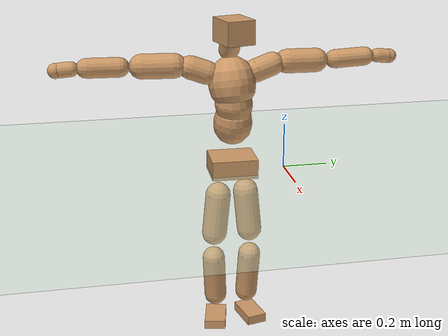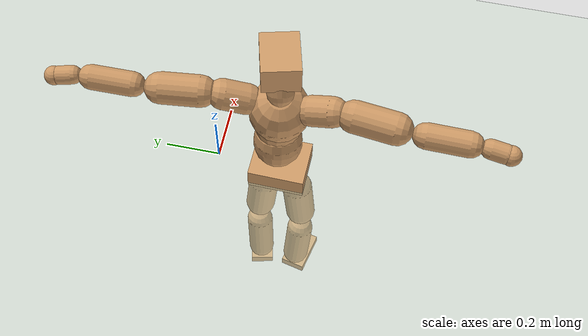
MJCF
<mujoco model="humanoid">
  <compiler coordinate="local" angle="radian"/>
  <default>
    <joint damping="0.0" armature="0.01" stiffness="0.0" limited="true"/>
    <geom conaffinity="1" condim="3" contype="7" margin="0.001" rgba="0.8 0.6 .4 1"/>
  </default>
  <asset>
    <texture type="skybox" builtin="gradient" rgb1=".4 .5 .6" rgb2="0 0 0" width="100" height="100"/>
    <texture builtin="flat" height="1278" mark="cross" markrgb="1 1 1" name="texgeom" random="0.01" rgb1="0.8 0.6 0.4" rgb2="0.8 0.6 0.4" type="cube" width="127"/>
    <texture builtin="checker" height="100" name="texplane" rgb1="0 0 0" rgb2="0.8 0.8 0.8" type="2d" width="100"/>
    <material name="MatPlane" reflectance="0.5" shininess="1" specular="1" texrepeat="60 60" texture="texplane"/>
    <material name="geom" texture="texgeom" texuniform="true"/>
  </asset>
  <worldbody>
    <light cutoff="100" diffuse="1 1 1" dir="-0 0 -1.3" directional="true" exponent="1" pos="0 0 1.3" specular=".1 .1 .1"/>
    <geom conaffinity="1" condim="3" name="floor" pos="0 0 0" rgba="0.8 0.9 0.8 1" size="100 100 .2" type="plane" material="MatPlane"/>
    <body name="Pelvis" pos="-0.0001 -0.2358 0.0324">
      <freejoint name="Pelvis"/>
      <geom type="box" contype="1" conaffinity="1" density="500" pos="-0.0090 0.0002 -0.0070" size="0.0864 0.1019 0.0426" quat="1.0000 0.0000 0.0000 -0.0087" name="Pelvis"/>
      <body name="L_Hip" pos="-0.0109 0.0559 -0.0763">
        <joint name="L_Hip_x" type="hinge" pos="0 0 0" axis="1 0 0" stiffness="800" damping="80" armature="0.02" range="-180.0000 180.0000"/>
        <joint name="L_Hip_y" type="hinge" pos="0 0 0" axis="0 1 0" stiffness="800" damping="80" armature="0.02" range="-180.0000 180.0000"/>
        <joint name="L_Hip_z" type="hinge" pos="0 0 0" axis="0 0 1" stiffness="800" damping="80" armature="0.02" range="-180.0000 180.0000"/>
        <geom type="capsule" contype="1" conaffinity="1" density="500" fromto="0.0010 0.0061 -0.0630 0.0039 0.0243 -0.2522" size="0.0563" name="L_Hip"/>
        <body name="L_Knee" pos="0.0049 0.0303 -0.3152">
          <joint name="L_Knee_x" type="hinge" pos="0 0 0" axis="1 0 0" stiffness="800" damping="80" armature="0.02" range="-180.0000 180.0000"/>
          <joint name="L_Knee_y" type="hinge" pos="0 0 0" axis="0 1 0" stiffness="800" damping="80" armature="0.02" range="-180.0000 180.0000"/>
          <joint name="L_Knee_z" type="hinge" pos="0 0 0" axis="0 0 1" stiffness="800" damping="80" armature="0.02" range="-180.0000 180.0000"/>
          <geom type="capsule" contype="1" conaffinity="1" density="500" fromto="-0.0072 -0.0029 -0.0691 -0.0290 -0.0116 -0.2766" size="0.051" name="L_Knee"/>
          <body name="L_Ankle" pos="-0.0362 -0.0145 -0.3457">
            <joint name="L_Ankle_x" type="hinge" pos="0 0 0" axis="1 0 0" stiffness="800" damping="80" armature="0.02" range="-180.0000 180.0000"/>
            <joint name="L_Ankle_y" type="hinge" pos="0 0 0" axis="0 1 0" stiffness="800" damping="80" armature="0.02" range="-180.0000 180.0000"/>
            <joint name="L_Ankle_z" type="hinge" pos="0 0 0" axis="0 0 1" stiffness="800" damping="80" armature="0.02" range="-180.0000 180.0000"/>
            <geom type="box" contype="1" conaffinity="1" density="500" pos="0.0554 0.0125 -0.0245" size="0.0796 0.0454 0.0208" quat="0.9938 0.0000 0.0000 0.1109" name="L_Ankle"/>
            <body name="L_Toe" pos="0.1108 0.025 -0.049">
              <joint name="L_Toe_x" type="hinge" pos="0 0 0" axis="1 0 0" stiffness="500" damping="50" armature="0.02" range="-180.0000 180.0000"/>
              <joint name="L_Toe_y" type="hinge" pos="0 0 0" axis="0 1 0" stiffness="500" damping="50" armature="0.02" range="-180.0000 180.0000"/>
              <joint name="L_Toe_z" type="hinge" pos="0 0 0" axis="0 0 1" stiffness="500" damping="50" armature="0.02" range="-180.0000 180.0000"/>
              <geom type="box" contype="1" conaffinity="1" density="500" pos="0.0000 0.0000 0.0251" size="0.0009 0.0023 0.0011" quat="0.9931 0.0000 0.0000 0.1174" name="L_Toe"/>
            </body>
          </body>
        </body>
      </body>
      <body name="R_Hip" pos="-0.006 -0.0585 -0.0849">
        <joint name="R_Hip_x" type="hinge" pos="0 0 0" axis="1 0 0" stiffness="800" damping="80" armature="0.02" range="-180.0000 180.0000"/>
        <joint name="R_Hip_y" type="hinge" pos="0 0 0" axis="0 1 0" stiffness="800" damping="80" armature="0.02" range="-180.0000 180.0000"/>
        <joint name="R_Hip_z" type="hinge" pos="0 0 0" axis="0 0 1" stiffness="800" damping="80" armature="0.02" range="-180.0000 180.0000"/>
        <geom type="capsule" contype="1" conaffinity="1" density="500" fromto="-0.0007 -0.0061 -0.0631 -0.0026 -0.0243 -0.2523" size="0.0563" name="R_Hip"/>
        <body name="R_Knee" pos="-0.0033 -0.0304 -0.3154">
          <joint name="R_Knee_x" type="hinge" pos="0 0 0" axis="1 0 0" stiffness="800" damping="80" armature="0.02" range="-180.0000 180.0000"/>
          <joint name="R_Knee_y" type="hinge" pos="0 0 0" axis="0 1 0" stiffness="800" damping="80" armature="0.02" range="-180.0000 180.0000"/>
          <joint name="R_Knee_z" type="hinge" pos="0 0 0" axis="0 0 1" stiffness="800" damping="80" armature="0.02" range="-180.0000 180.0000"/>
          <geom type="capsule" contype="1" conaffinity="1" density="500" fromto="-0.0064 0.0035 -0.0680 -0.0255 0.0142 -0.2720" size="0.0513" name="R_Knee"/>
          <body name="R_Ankle" pos="-0.0319 0.0177 -0.34">
            <joint name="R_Ankle_x" type="hinge" pos="0 0 0" axis="1 0 0" stiffness="800" damping="80" armature="0.02" range="-180.0000 180.0000"/>
            <joint name="R_Ankle_y" type="hinge" pos="0 0 0" axis="0 1 0" stiffness="800" damping="80" armature="0.02" range="-180.0000 180.0000"/>
            <joint name="R_Ankle_z" type="hinge" pos="0 0 0" axis="0 0 1" stiffness="800" damping="80" armature="0.02" range="-180.0000 180.0000"/>
            <geom type="box" contype="1" conaffinity="1" density="500" pos="0.0580 -0.0128 -0.0264" size="0.0797 0.0481 0.0203" quat="0.9941 0.0000 0.0000 -0.1081" name="R_Ankle"/>
            <body name="R_Toe" pos="0.116 -0.0255 -0.0528">
              <joint name="R_Toe_x" type="hinge" pos="0 0 0" axis="1 0 0" stiffness="500" damping="50" armature="0.02" range="-180.0000 180.0000"/>
              <joint name="R_Toe_y" type="hinge" pos="0 0 0" axis="0 1 0" stiffness="500" damping="50" armature="0.02" range="-180.0000 180.0000"/>
              <joint name="R_Toe_z" type="hinge" pos="0 0 0" axis="0 0 1" stiffness="500" damping="50" armature="0.02" range="-180.0000 180.0000"/>
              <geom type="box" contype="1" conaffinity="1" density="500" pos="0.0000 0.0000 0.0268" size="0.0011 0.0024 0.001" quat="0.9952 0.0000 0.0000 -0.0983" name="R_Toe"/>
            </body>
          </body>
        </body>
      </body>
      <body name="Torso" pos="-0.0371 0.0036 0.119">
        <joint name="Torso_x" type="hinge" pos="0 0 0" axis="1 0 0" stiffness="1000" damping="100" armature="0.02" range="-180.0000 180.0000"/>
        <joint name="Torso_y" type="hinge" pos="0 0 0" axis="0 1 0" stiffness="1000" damping="100" armature="0.02" range="-180.0000 180.0000"/>
        <joint name="Torso_z" type="hinge" pos="0 0 0" axis="0 0 1" stiffness="1000" damping="100" armature="0.02" range="-180.0000 180.0000"/>
        <geom type="capsule" contype="1" conaffinity="1" density="500" fromto="0.0149 0.0028 0.0761 0.0099 0.0019 0.0507" size="0.0851" name="Torso"/>
        <body name="Spine" pos="0.0248 0.0046 0.1268">
          <joint name="Spine_x" type="hinge" pos="0 0 0" axis="1 0 0" stiffness="1000" damping="100" armature="0.02" range="-180.0000 180.0000"/>
          <joint name="Spine_y" type="hinge" pos="0 0 0" axis="0 1 0" stiffness="1000" damping="100" armature="0.02" range="-180.0000 180.0000"/>
          <joint name="Spine_z" type="hinge" pos="0 0 0" axis="0 0 1" stiffness="1000" damping="100" armature="0.02" range="-180.0000 180.0000"/>
          <geom type="capsule" contype="1" conaffinity="1" density="500" fromto="0.0036 -0.0013 0.0306 0.0024 -0.0009 0.0204" size="0.0832" name="Spine"/>
          <body name="Chest" pos="0.006 -0.0022 0.0509">
            <joint name="Chest_x" type="hinge" pos="0 0 0" axis="1 0 0" stiffness="1000" damping="100" armature="0.02" range="-180.0000 180.0000"/>
            <joint name="Chest_y" type="hinge" pos="0 0 0" axis="0 1 0" stiffness="1000" damping="100" armature="0.02" range="-180.0000 180.0000"/>
            <joint name="Chest_z" type="hinge" pos="0 0 0" axis="0 0 1" stiffness="1000" damping="100" armature="0.02" range="-180.0000 180.0000"/>
            <geom type="capsule" contype="1" conaffinity="1" density="500" fromto="-0.0194 -0.0055 0.0810 -0.0129 -0.0037 0.0540" size="0.103" name="Chest"/>
            <body name="Neck" pos="-0.0509 -0.0142 0.1932">
              <joint name="Neck_x" type="hinge" pos="0 0 0" axis="1 0 0" stiffness="500" damping="50" armature="0.02" range="-180.0000 180.0000"/>
              <joint name="Neck_y" type="hinge" pos="0 0 0" axis="0 1 0" stiffness="500" damping="50" armature="0.02" range="-180.0000 180.0000"/>
              <joint name="Neck_z" type="hinge" pos="0 0 0" axis="0 0 1" stiffness="500" damping="50" armature="0.02" range="-180.0000 180.0000"/>
              <geom type="capsule" contype="1" conaffinity="1" density="500" fromto="0.0075 0.0017 0.0139 0.0300 0.0067 0.0555" size="0.0448" name="Neck"/>
              <body name="Head" pos="0.0375 0.0084 0.0693">
                <joint name="Head_x" type="hinge" pos="0 0 0" axis="1 0 0" stiffness="500" damping="50" armature="0.02" range="-180.0000 180.0000"/>
                <joint name="Head_y" type="hinge" pos="0 0 0" axis="0 1 0" stiffness="500" damping="50" armature="0.02" range="-180.0000 180.0000"/>
                <joint name="Head_z" type="hinge" pos="0 0 0" axis="0 0 1" stiffness="500" damping="50" armature="0.02" range="-180.0000 180.0000"/>
                <geom type="box" contype="1" conaffinity="1" density="500" pos="0.0198 0.0052 0.0357" size="0.0759 0.0632 0.0524" quat="0.9917 0.0000 0.0000 0.1284" name="Head"/>
              </body>
            </body>
            <body name="L_Thorax" pos="-0.0213 0.0743 0.1058">
              <joint name="L_Thorax_x" type="hinge" pos="0 0 0" axis="1 0 0" stiffness="500" damping="50" armature="0.02" range="-180.0000 180.0000"/>
              <joint name="L_Thorax_y" type="hinge" pos="0 0 0" axis="0 1 0" stiffness="500" damping="50" armature="0.02" range="-180.0000 180.0000"/>
              <joint name="L_Thorax_z" type="hinge" pos="0 0 0" axis="0 0 1" stiffness="500" damping="50" armature="0.02" range="-180.0000 180.0000"/>
              <geom type="capsule" contype="1" conaffinity="1" density="500" fromto="-0.0046 0.0260 0.0080 -0.0186 0.1041 0.0321" size="0.052" name="L_Thorax"/>
              <body name="L_Shoulder" pos="-0.0232 0.1301 0.0402">
                <joint name="L_Shoulder_x" type="hinge" pos="0 0 0" axis="1 0 0" stiffness="500" damping="50" armature="0.02" range="-720.0000 720.0000"/>
                <joint name="L_Shoulder_y" type="hinge" pos="0 0 0" axis="0 1 0" stiffness="500" damping="50" armature="0.02" range="-720.0000 720.0000"/>
                <joint name="L_Shoulder_z" type="hinge" pos="0 0 0" axis="0 0 1" stiffness="500" damping="50" armature="0.02" range="-720.0000 720.0000"/>
                <geom type="capsule" contype="1" conaffinity="1" density="500" fromto="-0.0039 0.0443 -0.0014 -0.0157 0.1771 -0.0057" size="0.0539" name="L_Shoulder"/>
                <body name="L_Elbow" pos="-0.0197 0.2214 -0.0072">
                  <joint name="L_Elbow_x" type="hinge" pos="0 0 0" axis="1 0 0" stiffness="500" damping="50" armature="0.02" range="-720.0000 720.0000"/>
                  <joint name="L_Elbow_y" type="hinge" pos="0 0 0" axis="0 1 0" stiffness="500" damping="50" armature="0.02" range="-720.0000 720.0000"/>
                  <joint name="L_Elbow_z" type="hinge" pos="0 0 0" axis="0 0 1" stiffness="500" damping="50" armature="0.02" range="-720.0000 720.0000"/>
                  <geom type="capsule" contype="1" conaffinity="1" density="500" fromto="-0.0015 0.0464 0.0017 -0.0061 0.1857 0.0070" size="0.042" name="L_Elbow"/>
                  <body name="L_Wrist" pos="-0.0076 0.2321 0.0087">
                    <joint name="L_Wrist_x" type="hinge" pos="0 0 0" axis="1 0 0" stiffness="300" damping="30" armature="0.02" range="-180.0000 180.0000"/>
                    <joint name="L_Wrist_y" type="hinge" pos="0 0 0" axis="0 1 0" stiffness="300" damping="30" armature="0.02" range="-180.0000 180.0000"/>
                    <joint name="L_Wrist_z" type="hinge" pos="0 0 0" axis="0 0 1" stiffness="300" damping="30" armature="0.02" range="-180.0000 180.0000"/>
                    <geom type="capsule" contype="1" conaffinity="1" density="500" fromto="-0.0027 0.0156 -0.0019 -0.0108 0.0625 -0.0074" size="0.0315" name="L_Wrist"/>
                    <body name="L_Hand" pos="-0.0135 0.0781 -0.0093">
                      <joint name="L_Hand_x" type="hinge" pos="0 0 0" axis="1 0 0" stiffness="300" damping="30" armature="0.02" range="-180.0000 180.0000"/>
                      <joint name="L_Hand_y" type="hinge" pos="0 0 0" axis="0 1 0" stiffness="300" damping="30" armature="0.02" range="-180.0000 180.0000"/>
                      <joint name="L_Hand_z" type="hinge" pos="0 0 0" axis="0 0 1" stiffness="300" damping="30" armature="0.02" range="-180.0000 180.0000"/>
                      <geom type="sphere" contype="1" conaffinity="1" density="500" size="0.0322" pos="0.0000 0.0000 0.0000" name="L_Hand"/>
                    </body>
                  </body>
                </body>
              </body>
            </body>
            <body name="R_Thorax" pos="-0.0248 -0.0876 0.1059">
              <joint name="R_Thorax_x" type="hinge" pos="0 0 0" axis="1 0 0" stiffness="500" damping="50" armature="0.02" range="-180.0000 180.0000"/>
              <joint name="R_Thorax_y" type="hinge" pos="0 0 0" axis="0 1 0" stiffness="500" damping="50" armature="0.02" range="-180.0000 180.0000"/>
              <joint name="R_Thorax_z" type="hinge" pos="0 0 0" axis="0 0 1" stiffness="500" damping="50" armature="0.02" range="-180.0000 180.0000"/>
              <geom type="capsule" contype="1" conaffinity="1" density="500" fromto="-0.0025 -0.0238 0.0084 -0.0098 -0.0950 0.0336" size="0.0518" name="R_Thorax"/>
              <body name="R_Shoulder" pos="-0.0123 -0.1188 0.0421">
                <joint name="R_Shoulder_x" type="hinge" pos="0 0 0" axis="1 0 0" stiffness="500" damping="50" armature="0.02" range="-720.0000 720.0000"/>
                <joint name="R_Shoulder_y" type="hinge" pos="0 0 0" axis="0 1 0" stiffness="500" damping="50" armature="0.02" range="-720.0000 720.0000"/>
                <joint name="R_Shoulder_z" type="hinge" pos="0 0 0" axis="0 0 1" stiffness="500" damping="50" armature="0.02" range="-720.0000 720.0000"/>
                <geom type="capsule" contype="1" conaffinity="1" density="500" fromto="-0.0054 -0.0458 -0.0003 -0.0216 -0.1833 -0.0013" size="0.0546" name="R_Shoulder"/>
                <body name="R_Elbow" pos="-0.027 -0.2292 -0.0016">
                  <joint name="R_Elbow_x" type="hinge" pos="0 0 0" axis="1 0 0" stiffness="500" damping="50" armature="0.02" range="-720.0000 720.0000"/>
                  <joint name="R_Elbow_y" type="hinge" pos="0 0 0" axis="0 1 0" stiffness="500" damping="50" armature="0.02" range="-720.0000 720.0000"/>
                  <joint name="R_Elbow_z" type="hinge" pos="0 0 0" axis="0 0 1" stiffness="500" damping="50" armature="0.02" range="-720.0000 720.0000"/>
                  <geom type="capsule" contype="1" conaffinity="1" density="500" fromto="-0.0010 -0.0467 0.0004 -0.0040 -0.1868 0.0017" size="0.0432" name="R_Elbow"/>
                  <body name="R_Wrist" pos="-0.005 -0.2335 0.0021">
                    <joint name="R_Wrist_x" type="hinge" pos="0 0 0" axis="1 0 0" stiffness="300" damping="30" armature="0.02" range="-180.0000 180.0000"/>
                    <joint name="R_Wrist_y" type="hinge" pos="0 0 0" axis="0 1 0" stiffness="300" damping="30" armature="0.02" range="-180.0000 180.0000"/>
                    <joint name="R_Wrist_z" type="hinge" pos="0 0 0" axis="0 0 1" stiffness="300" damping="30" armature="0.02" range="-180.0000 180.0000"/>
                    <geom type="capsule" contype="1" conaffinity="1" density="500" fromto="-0.0017 -0.0164 -0.0016 -0.0069 -0.0654 -0.0063" size="0.0329" name="R_Wrist"/>
                    <body name="R_Hand" pos="-0.0087 -0.0818 -0.0079">
                      <joint name="R_Hand_x" type="hinge" pos="0 0 0" axis="1 0 0" stiffness="300" damping="30" armature="0.02" range="-180.0000 180.0000"/>
                      <joint name="R_Hand_y" type="hinge" pos="0 0 0" axis="0 1 0" stiffness="300" damping="30" armature="0.02" range="-180.0000 180.0000"/>
                      <joint name="R_Hand_z" type="hinge" pos="0 0 0" axis="0 0 1" stiffness="300" damping="30" armature="0.02" range="-180.0000 180.0000"/>
                      <geom type="sphere" contype="1" conaffinity="1" density="500" size="0.0334" pos="0.0000 0.0000 0.0000" name="R_Hand"/>
                    </body>
                  </body>
                </body>
              </body>
            </body>
          </body>
        </body>
      </body>
    </body>
  </worldbody>
  <actuator>
    <motor name="L_Hip_x" joint="L_Hip_x" gear="500"/>
    <motor name="L_Hip_y" joint="L_Hip_y" gear="500"/>
    <motor name="L_Hip_z" joint="L_Hip_z" gear="500"/>
    <motor name="L_Knee_x" joint="L_Knee_x" gear="500"/>
    <motor name="L_Knee_y" joint="L_Knee_y" gear="500"/>
    <motor name="L_Knee_z" joint="L_Knee_z" gear="500"/>
    <motor name="L_Ankle_x" joint="L_Ankle_x" gear="500"/>
    <motor name="L_Ankle_y" joint="L_Ankle_y" gear="500"/>
    <motor name="L_Ankle_z" joint="L_Ankle_z" gear="500"/>
    <motor name="L_Toe_x" joint="L_Toe_x" gear="500"/>
    <motor name="L_Toe_y" joint="L_Toe_y" gear="500"/>
    <motor name="L_Toe_z" joint="L_Toe_z" gear="500"/>
    <motor name="R_Hip_x" joint="R_Hip_x" gear="500"/>
    <motor name="R_Hip_y" joint="R_Hip_y" gear="500"/>
    <motor name="R_Hip_z" joint="R_Hip_z" gear="500"/>
    <motor name="R_Knee_x" joint="R_Knee_x" gear="500"/>
    <motor name="R_Knee_y" joint="R_Knee_y" gear="500"/>
    <motor name="R_Knee_z" joint="R_Knee_z" gear="500"/>
    <motor name="R_Ankle_x" joint="R_Ankle_x" gear="500"/>
    <motor name="R_Ankle_y" joint="R_Ankle_y" gear="500"/>
    <motor name="R_Ankle_z" joint="R_Ankle_z" gear="500"/>
    <motor name="R_Toe_x" joint="R_Toe_x" gear="500"/>
    <motor name="R_Toe_y" joint="R_Toe_y" gear="500"/>
    <motor name="R_Toe_z" joint="R_Toe_z" gear="500"/>
    <motor name="Torso_x" joint="Torso_x" gear="500"/>
    <motor name="Torso_y" joint="Torso_y" gear="500"/>
    <motor name="Torso_z" joint="Torso_z" gear="500"/>
    <motor name="Spine_x" joint="Spine_x" gear="500"/>
    <motor name="Spine_y" joint="Spine_y" gear="500"/>
    <motor name="Spine_z" joint="Spine_z" gear="500"/>
    <motor name="Chest_x" joint="Chest_x" gear="500"/>
    <motor name="Chest_y" joint="Chest_y" gear="500"/>
    <motor name="Chest_z" joint="Chest_z" gear="500"/>
    <motor name="Neck_x" joint="Neck_x" gear="500"/>
    <motor name="Neck_y" joint="Neck_y" gear="500"/>
    <motor name="Neck_z" joint="Neck_z" gear="500"/>
    <motor name="Head_x" joint="Head_x" gear="500"/>
    <motor name="Head_y" joint="Head_y" gear="500"/>
    <motor name="Head_z" joint="Head_z" gear="500"/>
    <motor name="L_Thorax_x" joint="L_Thorax_x" gear="500"/>
    <motor name="L_Thorax_y" joint="L_Thorax_y" gear="500"/>
    <motor name="L_Thorax_z" joint="L_Thorax_z" gear="500"/>
    <motor name="L_Shoulder_x" joint="L_Shoulder_x" gear="500"/>
    <motor name="L_Shoulder_y" joint="L_Shoulder_y" gear="500"/>
    <motor name="L_Shoulder_z" joint="L_Shoulder_z" gear="500"/>
    <motor name="L_Elbow_x" joint="L_Elbow_x" gear="500"/>
    <motor name="L_Elbow_y" joint="L_Elbow_y" gear="500"/>
    <motor name="L_Elbow_z" joint="L_Elbow_z" gear="500"/>
    <motor name="L_Wrist_x" joint="L_Wrist_x" gear="500"/>
    <motor name="L_Wrist_y" joint="L_Wrist_y" gear="500"/>
    <motor name="L_Wrist_z" joint="L_Wrist_z" gear="500"/>
    <motor name="L_Hand_x" joint="L_Hand_x" gear="500"/>
    <motor name="L_Hand_y" joint="L_Hand_y" gear="500"/>
    <motor name="L_Hand_z" joint="L_Hand_z" gear="500"/>
    <motor name="R_Thorax_x" joint="R_Thorax_x" gear="500"/>
    <motor name="R_Thorax_y" joint="R_Thorax_y" gear="500"/>
    <motor name="R_Thorax_z" joint="R_Thorax_z" gear="500"/>
    <motor name="R_Shoulder_x" joint="R_Shoulder_x" gear="500"/>
    <motor name="R_Shoulder_y" joint="R_Shoulder_y" gear="500"/>
    <motor name="R_Shoulder_z" joint="R_Shoulder_z" gear="500"/>
    <motor name="R_Elbow_x" joint="R_Elbow_x" gear="500"/>
    <motor name="R_Elbow_y" joint="R_Elbow_y" gear="500"/>
    <motor name="R_Elbow_z" joint="R_Elbow_z" gear="500"/>
    <motor name="R_Wrist_x" joint="R_Wrist_x" gear="500"/>
    <motor name="R_Wrist_y" joint="R_Wrist_y" gear="500"/>
    <motor name="R_Wrist_z" joint="R_Wrist_z" gear="500"/>
    <motor name="R_Hand_x" joint="R_Hand_x" gear="500"/>
    <motor name="R_Hand_y" joint="R_Hand_y" gear="500"/>
    <motor name="R_Hand_z" joint="R_Hand_z" gear="500"/>
  </actuator>
  <contact>
    <exclude body1="Torso" body2="Chest"/>
    <exclude body1="Head" body2="Chest"/>
    <exclude body1="R_Knee" body2="R_Toe"/>
    <exclude body1="R_Knee" body2="L_Ankle"/>
    <exclude body1="R_Knee" body2="L_Toe"/>
    <exclude body1="L_Knee" body2="L_Toe"/>
    <exclude body1="L_Knee" body2="R_Ankle"/>
    <exclude body1="L_Knee" body2="R_Toe"/>
    <exclude body1="L_Shoulder" body2="Chest"/>
    <exclude body1="R_Shoulder" body2="Chest"/>
  </contact>
  <sensor/>
  <size njmax="700" nconmax="700"/>
</mujoco>
